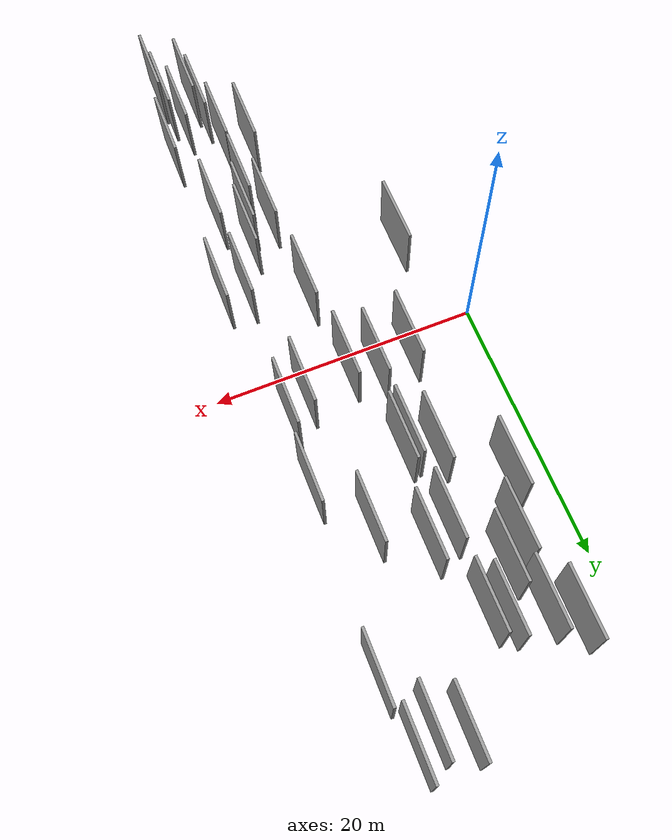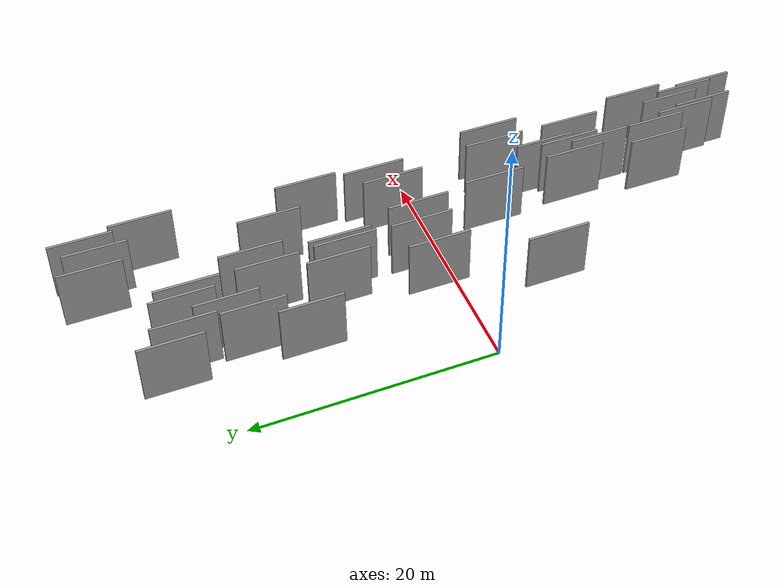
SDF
<sdf version="1.6">
 <world name="default">
  <scene>
   <sky><clouds><speed>12</speed></clouds></sky>
   <ambient>0.4 0.4 0.4 1</ambient>
   <background>0.7 0.7 0.7 1</background>
   <shadows>1</shadows>
  </scene>
  <gravity>0 0 -9.8066</gravity>
  <magnetic_field>6e-06 2.3e-05 -4.2e-05</magnetic_field>
  <physics default="0" name="default_physics" type="ode">
   <ode>
    <solver>
     <type>quick</type>
     <iters>10</iters>
     <sor>1.0</sor>
     <use_dynamic_moi_rescaling>0</use_dynamic_moi_rescaling>
    </solver>
    <constraints>
     <cfm>0</cfm>
     <erp>0.2</erp>
     <contact_max_correcting_vel>100</contact_max_correcting_vel>
     <contact_surface_layer>0.001</contact_surface_layer>
    </constraints>
   </ode>
   <max_step_size>0.004</max_step_size>
   <real_time_factor>1</real_time_factor>
   <real_time_update_rate>250</real_time_update_rate>
  </physics>
  <light name="sun" type="directional">
   <pose>0 0 10 0 0 0</pose>
   <diffuse>0.8 0.8 0.8 1</diffuse>
   <specular>0.2 0.2 0.2 1</specular>
   <attenuation>
    <range>1000</range>
    <constant>0.9</constant>
    <linear>0.01</linear>
    <quadratic>0.001</quadratic>
   </attenuation>
   <direction>-0.5 0.1 -0.9</direction>
  </light>
  <model name="grey_wall_1">
   <static>1</static>
   <pose>12.9203 27.4622 2.5 0.000000 0.000000 1.570796</pose>
   <link name="link">
    <pose>0 0 2.50 0 0 0</pose>
    <collision name="collision"><geometry><box><size>5.00 0.2 5.00</size></box></geometry></collision>
    <visual name="visual">
     <cast_shadows>0</cast_shadows>
     <geometry><box><size>5.00 0.2 5.00</size></box></geometry>
     <material>
      <script>
       <uri>model://grey_wall/materials/scripts</uri>
       <uri>model://grey_wall/materials/textures</uri>
       <name>vrc/grey_wall</name>
      </script>
     </material>
    </visual>
   </link>
  </model>
  <model name="grey_wall_2">
   <static>1</static>
   <pose>11.5461 -11.6714 2.5 0.000000 0.000000 1.570796</pose>
   <link name="link">
    <pose>0 0 2.50 0 0 0</pose>
    <collision name="collision"><geometry><box><size>5.00 0.2 5.00</size></box></geometry></collision>
    <visual name="visual">
     <cast_shadows>0</cast_shadows>
     <geometry><box><size>5.00 0.2 5.00</size></box></geometry>
     <material>
      <script>
       <uri>model://grey_wall/materials/scripts</uri>
       <uri>model://grey_wall/materials/textures</uri>
       <name>vrc/grey_wall</name>
      </script>
     </material>
    </visual>
   </link>
  </model>
  <model name="grey_wall_3">
   <static>1</static>
   <pose>10.7123 2.2798 2.5 0.000000 0.000000 1.570796</pose>
   <link name="link">
    <pose>0 0 2.50 0 0 0</pose>
    <collision name="collision"><geometry><box><size>5.00 0.2 5.00</size></box></geometry></collision>
    <visual name="visual">
     <cast_shadows>0</cast_shadows>
     <geometry><box><size>5.00 0.2 5.00</size></box></geometry>
     <material>
      <script>
       <uri>model://grey_wall/materials/scripts</uri>
       <uri>model://grey_wall/materials/textures</uri>
       <name>vrc/grey_wall</name>
      </script>
     </material>
    </visual>
   </link>
  </model>
  <model name="grey_wall_4">
   <static>1</static>
   <pose>15.6072 -24.0280 2.5 0.000000 0.000000 1.570796</pose>
   <link name="link">
    <pose>0 0 2.50 0 0 0</pose>
    <collision name="collision"><geometry><box><size>5.00 0.2 5.00</size></box></geometry></collision>
    <visual name="visual">
     <cast_shadows>0</cast_shadows>
     <geometry><box><size>5.00 0.2 5.00</size></box></geometry>
     <material>
      <script>
       <uri>model://grey_wall/materials/scripts</uri>
       <uri>model://grey_wall/materials/textures</uri>
       <name>vrc/grey_wall</name>
      </script>
     </material>
    </visual>
   </link>
  </model>
  <model name="grey_wall_5">
   <static>1</static>
   <pose>16.7725 22.7189 2.5 0.000000 0.000000 1.570796</pose>
   <link name="link">
    <pose>0 0 2.50 0 0 0</pose>
    <collision name="collision"><geometry><box><size>5.00 0.2 5.00</size></box></geometry></collision>
    <visual name="visual">
     <cast_shadows>0</cast_shadows>
     <geometry><box><size>5.00 0.2 5.00</size></box></geometry>
     <material>
      <script>
       <uri>model://grey_wall/materials/scripts</uri>
       <uri>model://grey_wall/materials/textures</uri>
       <name>vrc/grey_wall</name>
      </script>
     </material>
    </visual>
   </link>
  </model>
  <model name="grey_wall_6">
   <static>1</static>
   <pose>16.1459 9.6242 2.5 0.000000 0.000000 1.570796</pose>
   <link name="link">
    <pose>0 0 2.50 0 0 0</pose>
    <collision name="collision"><geometry><box><size>5.00 0.2 5.00</size></box></geometry></collision>
    <visual name="visual">
     <cast_shadows>0</cast_shadows>
     <geometry><box><size>5.00 0.2 5.00</size></box></geometry>
     <material>
      <script>
       <uri>model://grey_wall/materials/scripts</uri>
       <uri>model://grey_wall/materials/textures</uri>
       <name>vrc/grey_wall</name>
      </script>
     </material>
    </visual>
   </link>
  </model>
  <model name="grey_wall_7">
   <static>1</static>
   <pose>13.1717 -22.7713 2.5 0.000000 0.000000 1.570796</pose>
   <link name="link">
    <pose>0 0 2.50 0 0 0</pose>
    <collision name="collision"><geometry><box><size>5.00 0.2 5.00</size></box></geometry></collision>
    <visual name="visual">
     <cast_shadows>0</cast_shadows>
     <geometry><box><size>5.00 0.2 5.00</size></box></geometry>
     <material>
      <script>
       <uri>model://grey_wall/materials/scripts</uri>
       <uri>model://grey_wall/materials/textures</uri>
       <name>vrc/grey_wall</name>
      </script>
     </material>
    </visual>
   </link>
  </model>
  <model name="grey_wall_8">
   <static>1</static>
   <pose>4.8966 17.3960 2.5 0.000000 0.000000 1.570796</pose>
   <link name="link">
    <pose>0 0 2.50 0 0 0</pose>
    <collision name="collision"><geometry><box><size>5.00 0.2 5.00</size></box></geometry></collision>
    <visual name="visual">
     <cast_shadows>0</cast_shadows>
     <geometry><box><size>5.00 0.2 5.00</size></box></geometry>
     <material>
      <script>
       <uri>model://grey_wall/materials/scripts</uri>
       <uri>model://grey_wall/materials/textures</uri>
       <name>vrc/grey_wall</name>
      </script>
     </material>
    </visual>
   </link>
  </model>
  <model name="grey_wall_9">
   <static>1</static>
   <pose>14.8341 -22.2336 2.5 0.000000 0.000000 1.570796</pose>
   <link name="link">
    <pose>0 0 2.50 0 0 0</pose>
    <collision name="collision"><geometry><box><size>5.00 0.2 5.00</size></box></geometry></collision>
    <visual name="visual">
     <cast_shadows>0</cast_shadows>
     <geometry><box><size>5.00 0.2 5.00</size></box></geometry>
     <material>
      <script>
       <uri>model://grey_wall/materials/scripts</uri>
       <uri>model://grey_wall/materials/textures</uri>
       <name>vrc/grey_wall</name>
      </script>
     </material>
    </visual>
   </link>
  </model>
  <model name="grey_wall_10">
   <static>1</static>
   <pose>13.5826 -10.0143 2.5 0.000000 0.000000 1.570796</pose>
   <link name="link">
    <pose>0 0 2.50 0 0 0</pose>
    <collision name="collision"><geometry><box><size>5.00 0.2 5.00</size></box></geometry></collision>
    <visual name="visual">
     <cast_shadows>0</cast_shadows>
     <geometry><box><size>5.00 0.2 5.00</size></box></geometry>
     <material>
      <script>
       <uri>model://grey_wall/materials/scripts</uri>
       <uri>model://grey_wall/materials/textures</uri>
       <name>vrc/grey_wall</name>
      </script>
     </material>
    </visual>
   </link>
  </model>
  <model name="grey_wall_11">
   <static>1</static>
   <pose>6.3353 19.0176 2.5 0.000000 0.000000 1.570796</pose>
   <link name="link">
    <pose>0 0 2.50 0 0 0</pose>
    <collision name="collision"><geometry><box><size>5.00 0.2 5.00</size></box></geometry></collision>
    <visual name="visual">
     <cast_shadows>0</cast_shadows>
     <geometry><box><size>5.00 0.2 5.00</size></box></geometry>
     <material>
      <script>
       <uri>model://grey_wall/materials/scripts</uri>
       <uri>model://grey_wall/materials/textures</uri>
       <name>vrc/grey_wall</name>
      </script>
     </material>
    </visual>
   </link>
  </model>
  <model name="grey_wall_12">
   <static>1</static>
   <pose>8.9002 8.9577 2.5 0.000000 0.000000 1.570796</pose>
   <link name="link">
    <pose>0 0 2.50 0 0 0</pose>
    <collision name="collision"><geometry><box><size>5.00 0.2 5.00</size></box></geometry></collision>
    <visual name="visual">
     <cast_shadows>0</cast_shadows>
     <geometry><box><size>5.00 0.2 5.00</size></box></geometry>
     <material>
      <script>
       <uri>model://grey_wall/materials/scripts</uri>
       <uri>model://grey_wall/materials/textures</uri>
       <name>vrc/grey_wall</name>
      </script>
     </material>
    </visual>
   </link>
  </model>
  <model name="grey_wall_13">
   <static>1</static>
   <pose>3.5009 13.4850 2.5 0.000000 0.000000 1.570796</pose>
   <link name="link">
    <pose>0 0 2.50 0 0 0</pose>
    <collision name="collision"><geometry><box><size>5.00 0.2 5.00</size></box></geometry></collision>
    <visual name="visual">
     <cast_shadows>0</cast_shadows>
     <geometry><box><size>5.00 0.2 5.00</size></box></geometry>
     <material>
      <script>
       <uri>model://grey_wall/materials/scripts</uri>
       <uri>model://grey_wall/materials/textures</uri>
       <name>vrc/grey_wall</name>
      </script>
     </material>
    </visual>
   </link>
  </model>
  <model name="grey_wall_14">
   <static>1</static>
   <pose>16.9659 -6.4878 2.5 0.000000 0.000000 1.570796</pose>
   <link name="link">
    <pose>0 0 2.50 0 0 0</pose>
    <collision name="collision"><geometry><box><size>5.00 0.2 5.00</size></box></geometry></collision>
    <visual name="visual">
     <cast_shadows>0</cast_shadows>
     <geometry><box><size>5.00 0.2 5.00</size></box></geometry>
     <material>
      <script>
       <uri>model://grey_wall/materials/scripts</uri>
       <uri>model://grey_wall/materials/textures</uri>
       <name>vrc/grey_wall</name>
      </script>
     </material>
    </visual>
   </link>
  </model>
  <model name="grey_wall_15">
   <static>1</static>
   <pose>10.4096 15.9132 2.5 0.000000 0.000000 1.570796</pose>
   <link name="link">
    <pose>0 0 2.50 0 0 0</pose>
    <collision name="collision"><geometry><box><size>5.00 0.2 5.00</size></box></geometry></collision>
    <visual name="visual">
     <cast_shadows>0</cast_shadows>
     <geometry><box><size>5.00 0.2 5.00</size></box></geometry>
     <material>
      <script>
       <uri>model://grey_wall/materials/scripts</uri>
       <uri>model://grey_wall/materials/textures</uri>
       <name>vrc/grey_wall</name>
      </script>
     </material>
    </visual>
   </link>
  </model>
  <model name="grey_wall_16">
   <static>1</static>
   <pose>5.2708 22.4795 2.5 0.000000 0.000000 1.570796</pose>
   <link name="link">
    <pose>0 0 2.50 0 0 0</pose>
    <collision name="collision"><geometry><box><size>5.00 0.2 5.00</size></box></geometry></collision>
    <visual name="visual">
     <cast_shadows>0</cast_shadows>
     <geometry><box><size>5.00 0.2 5.00</size></box></geometry>
     <material>
      <script>
       <uri>model://grey_wall/materials/scripts</uri>
       <uri>model://grey_wall/materials/textures</uri>
       <name>vrc/grey_wall</name>
      </script>
     </material>
    </visual>
   </link>
  </model>
  <model name="grey_wall_17">
   <static>1</static>
   <pose>7.3440 10.0413 2.5 0.000000 0.000000 1.570796</pose>
   <link name="link">
    <pose>0 0 2.50 0 0 0</pose>
    <collision name="collision"><geometry><box><size>5.00 0.2 5.00</size></box></geometry></collision>
    <visual name="visual">
     <cast_shadows>0</cast_shadows>
     <geometry><box><size>5.00 0.2 5.00</size></box></geometry>
     <material>
      <script>
       <uri>model://grey_wall/materials/scripts</uri>
       <uri>model://grey_wall/materials/textures</uri>
       <name>vrc/grey_wall</name>
      </script>
     </material>
    </visual>
   </link>
  </model>
  <model name="grey_wall_18">
   <static>1</static>
   <pose>9.4286 9.1943 2.5 0.000000 0.000000 1.570796</pose>
   <link name="link">
    <pose>0 0 2.50 0 0 0</pose>
    <collision name="collision"><geometry><box><size>5.00 0.2 5.00</size></box></geometry></collision>
    <visual name="visual">
     <cast_shadows>0</cast_shadows>
     <geometry><box><size>5.00 0.2 5.00</size></box></geometry>
     <material>
      <script>
       <uri>model://grey_wall/materials/scripts</uri>
       <uri>model://grey_wall/materials/textures</uri>
       <name>vrc/grey_wall</name>
      </script>
     </material>
    </visual>
   </link>
  </model>
  <model name="grey_wall_19">
   <static>1</static>
   <pose>12.5606 -14.4296 2.5 0.000000 0.000000 1.570796</pose>
   <link name="link">
    <pose>0 0 2.50 0 0 0</pose>
    <collision name="collision"><geometry><box><size>5.00 0.2 5.00</size></box></geometry></collision>
    <visual name="visual">
     <cast_shadows>0</cast_shadows>
     <geometry><box><size>5.00 0.2 5.00</size></box></geometry>
     <material>
      <script>
       <uri>model://grey_wall/materials/scripts</uri>
       <uri>model://grey_wall/materials/textures</uri>
       <name>vrc/grey_wall</name>
      </script>
     </material>
    </visual>
   </link>
  </model>
  <model name="grey_wall_20">
   <static>1</static>
   <pose>10.6122 -18.8031 2.5 0.000000 0.000000 1.570796</pose>
   <link name="link">
    <pose>0 0 2.50 0 0 0</pose>
    <collision name="collision"><geometry><box><size>5.00 0.2 5.00</size></box></geometry></collision>
    <visual name="visual">
     <cast_shadows>0</cast_shadows>
     <geometry><box><size>5.00 0.2 5.00</size></box></geometry>
     <material>
      <script>
       <uri>model://grey_wall/materials/scripts</uri>
       <uri>model://grey_wall/materials/textures</uri>
       <name>vrc/grey_wall</name>
      </script>
     </material>
    </visual>
   </link>
  </model>
  <model name="grey_wall_21">
   <static>1</static>
   <pose>15.6922 4.0724 2.5 0.000000 0.000000 1.570796</pose>
   <link name="link">
    <pose>0 0 2.50 0 0 0</pose>
    <collision name="collision"><geometry><box><size>5.00 0.2 5.00</size></box></geometry></collision>
    <visual name="visual">
     <cast_shadows>0</cast_shadows>
     <geometry><box><size>5.00 0.2 5.00</size></box></geometry>
     <material>
      <script>
       <uri>model://grey_wall/materials/scripts</uri>
       <uri>model://grey_wall/materials/textures</uri>
       <name>vrc/grey_wall</name>
      </script>
     </material>
    </visual>
   </link>
  </model>
  <model name="grey_wall_22">
   <static>1</static>
   <pose>14.8339 26.6393 2.5 0.000000 0.000000 1.570796</pose>
   <link name="link">
    <pose>0 0 2.50 0 0 0</pose>
    <collision name="collision"><geometry><box><size>5.00 0.2 5.00</size></box></geometry></collision>
    <visual name="visual">
     <cast_shadows>0</cast_shadows>
     <geometry><box><size>5.00 0.2 5.00</size></box></geometry>
     <material>
      <script>
       <uri>model://grey_wall/materials/scripts</uri>
       <uri>model://grey_wall/materials/textures</uri>
       <name>vrc/grey_wall</name>
      </script>
     </material>
    </visual>
   </link>
  </model>
  <model name="grey_wall_23">
   <static>1</static>
   <pose>14.1491 3.0309 2.5 0.000000 0.000000 1.570796</pose>
   <link name="link">
    <pose>0 0 2.50 0 0 0</pose>
    <collision name="collision"><geometry><box><size>5.00 0.2 5.00</size></box></geometry></collision>
    <visual name="visual">
     <cast_shadows>0</cast_shadows>
     <geometry><box><size>5.00 0.2 5.00</size></box></geometry>
     <material>
      <script>
       <uri>model://grey_wall/materials/scripts</uri>
       <uri>model://grey_wall/materials/textures</uri>
       <name>vrc/grey_wall</name>
      </script>
     </material>
    </visual>
   </link>
  </model>
  <model name="grey_wall_24">
   <static>1</static>
   <pose>15.2235 -13.0170 2.5 0.000000 0.000000 1.570796</pose>
   <link name="link">
    <pose>0 0 2.50 0 0 0</pose>
    <collision name="collision"><geometry><box><size>5.00 0.2 5.00</size></box></geometry></collision>
    <visual name="visual">
     <cast_shadows>0</cast_shadows>
     <geometry><box><size>5.00 0.2 5.00</size></box></geometry>
     <material>
      <script>
       <uri>model://grey_wall/materials/scripts</uri>
       <uri>model://grey_wall/materials/textures</uri>
       <name>vrc/grey_wall</name>
      </script>
     </material>
    </visual>
   </link>
  </model>
  <model name="grey_wall_25">
   <static>1</static>
   <pose>16.1749 27.4548 2.5 0.000000 0.000000 1.570796</pose>
   <link name="link">
    <pose>0 0 2.50 0 0 0</pose>
    <collision name="collision"><geometry><box><size>5.00 0.2 5.00</size></box></geometry></collision>
    <visual name="visual">
     <cast_shadows>0</cast_shadows>
     <geometry><box><size>5.00 0.2 5.00</size></box></geometry>
     <material>
      <script>
       <uri>model://grey_wall/materials/scripts</uri>
       <uri>model://grey_wall/materials/textures</uri>
       <name>vrc/grey_wall</name>
      </script>
     </material>
    </visual>
   </link>
  </model>
  <model name="grey_wall_26">
   <static>1</static>
   <pose>15.8432 -25.9167 2.5 0.000000 0.000000 1.570796</pose>
   <link name="link">
    <pose>0 0 2.50 0 0 0</pose>
    <collision name="collision"><geometry><box><size>5.00 0.2 5.00</size></box></geometry></collision>
    <visual name="visual">
     <cast_shadows>0</cast_shadows>
     <geometry><box><size>5.00 0.2 5.00</size></box></geometry>
     <material>
      <script>
       <uri>model://grey_wall/materials/scripts</uri>
       <uri>model://grey_wall/materials/textures</uri>
       <name>vrc/grey_wall</name>
      </script>
     </material>
    </visual>
   </link>
  </model>
  <model name="grey_wall_27">
   <static>1</static>
   <pose>11.2037 -4.4236 2.5 0.000000 0.000000 1.570796</pose>
   <link name="link">
    <pose>0 0 2.50 0 0 0</pose>
    <collision name="collision"><geometry><box><size>5.00 0.2 5.00</size></box></geometry></collision>
    <visual name="visual">
     <cast_shadows>0</cast_shadows>
     <geometry><box><size>5.00 0.2 5.00</size></box></geometry>
     <material>
      <script>
       <uri>model://grey_wall/materials/scripts</uri>
       <uri>model://grey_wall/materials/textures</uri>
       <name>vrc/grey_wall</name>
      </script>
     </material>
    </visual>
   </link>
  </model>
  <model name="grey_wall_28">
   <static>1</static>
   <pose>3.6374 23.8120 2.5 0.000000 0.000000 1.570796</pose>
   <link name="link">
    <pose>0 0 2.50 0 0 0</pose>
    <collision name="collision"><geometry><box><size>5.00 0.2 5.00</size></box></geometry></collision>
    <visual name="visual">
     <cast_shadows>0</cast_shadows>
     <geometry><box><size>5.00 0.2 5.00</size></box></geometry>
     <material>
      <script>
       <uri>model://grey_wall/materials/scripts</uri>
       <uri>model://grey_wall/materials/textures</uri>
       <name>vrc/grey_wall</name>
      </script>
     </material>
    </visual>
   </link>
  </model>
  <model name="grey_wall_29">
   <static>1</static>
   <pose>13.5188 -24.6177 2.5 0.000000 0.000000 1.570796</pose>
   <link name="link">
    <pose>0 0 2.50 0 0 0</pose>
    <collision name="collision"><geometry><box><size>5.00 0.2 5.00</size></box></geometry></collision>
    <visual name="visual">
     <cast_shadows>0</cast_shadows>
     <geometry><box><size>5.00 0.2 5.00</size></box></geometry>
     <material>
      <script>
       <uri>model://grey_wall/materials/scripts</uri>
       <uri>model://grey_wall/materials/textures</uri>
       <name>vrc/grey_wall</name>
      </script>
     </material>
    </visual>
   </link>
  </model>
  <model name="grey_wall_30">
   <static>1</static>
   <pose>13.1099 -11.9654 2.5 0.000000 0.000000 1.570796</pose>
   <link name="link">
    <pose>0 0 2.50 0 0 0</pose>
    <collision name="collision"><geometry><box><size>5.00 0.2 5.00</size></box></geometry></collision>
    <visual name="visual">
     <cast_shadows>0</cast_shadows>
     <geometry><box><size>5.00 0.2 5.00</size></box></geometry>
     <material>
      <script>
       <uri>model://grey_wall/materials/scripts</uri>
       <uri>model://grey_wall/materials/textures</uri>
       <name>vrc/grey_wall</name>
      </script>
     </material>
    </visual>
   </link>
  </model>
  <model name="grey_wall_31">
   <static>1</static>
   <pose>16.5026 -19.6375 2.5 0.000000 0.000000 1.570796</pose>
   <link name="link">
    <pose>0 0 2.50 0 0 0</pose>
    <collision name="collision"><geometry><box><size>5.00 0.2 5.00</size></box></geometry></collision>
    <visual name="visual">
     <cast_shadows>0</cast_shadows>
     <geometry><box><size>5.00 0.2 5.00</size></box></geometry>
     <material>
      <script>
       <uri>model://grey_wall/materials/scripts</uri>
       <uri>model://grey_wall/materials/textures</uri>
       <name>vrc/grey_wall</name>
      </script>
     </material>
    </visual>
   </link>
  </model>
  <model name="grey_wall_32">
   <static>1</static>
   <pose>8.7587 21.3074 2.5 0.000000 0.000000 1.570796</pose>
   <link name="link">
    <pose>0 0 2.50 0 0 0</pose>
    <collision name="collision"><geometry><box><size>5.00 0.2 5.00</size></box></geometry></collision>
    <visual name="visual">
     <cast_shadows>0</cast_shadows>
     <geometry><box><size>5.00 0.2 5.00</size></box></geometry>
     <material>
      <script>
       <uri>model://grey_wall/materials/scripts</uri>
       <uri>model://grey_wall/materials/textures</uri>
       <name>vrc/grey_wall</name>
      </script>
     </material>
    </visual>
   </link>
  </model>
  <model name="grey_wall_33">
   <static>1</static>
   <pose>6.1484 2.4059 2.5 0.000000 0.000000 1.570796</pose>
   <link name="link">
    <pose>0 0 2.50 0 0 0</pose>
    <collision name="collision"><geometry><box><size>5.00 0.2 5.00</size></box></geometry></collision>
    <visual name="visual">
     <cast_shadows>0</cast_shadows>
     <geometry><box><size>5.00 0.2 5.00</size></box></geometry>
     <material>
      <script>
       <uri>model://grey_wall/materials/scripts</uri>
       <uri>model://grey_wall/materials/textures</uri>
       <name>vrc/grey_wall</name>
      </script>
     </material>
    </visual>
   </link>
  </model>
  <model name="grey_wall_34">
   <static>1</static>
   <pose>3.4774 -6.2241 2.5 0.000000 0.000000 1.570796</pose>
   <link name="link">
    <pose>0 0 2.50 0 0 0</pose>
    <collision name="collision"><geometry><box><size>5.00 0.2 5.00</size></box></geometry></collision>
    <visual name="visual">
     <cast_shadows>0</cast_shadows>
     <geometry><box><size>5.00 0.2 5.00</size></box></geometry>
     <material>
      <script>
       <uri>model://grey_wall/materials/scripts</uri>
       <uri>model://grey_wall/materials/textures</uri>
       <name>vrc/grey_wall</name>
      </script>
     </material>
    </visual>
   </link>
  </model>
  <model name="grey_wall_35">
   <static>1</static>
   <pose>15.2349 -6.2545 2.5 0.000000 0.000000 1.570796</pose>
   <link name="link">
    <pose>0 0 2.50 0 0 0</pose>
    <collision name="collision"><geometry><box><size>5.00 0.2 5.00</size></box></geometry></collision>
    <visual name="visual">
     <cast_shadows>0</cast_shadows>
     <geometry><box><size>5.00 0.2 5.00</size></box></geometry>
     <material>
      <script>
       <uri>model://grey_wall/materials/scripts</uri>
       <uri>model://grey_wall/materials/textures</uri>
       <name>vrc/grey_wall</name>
      </script>
     </material>
    </visual>
   </link>
  </model>
  <model name="grey_wall_36">
   <static>1</static>
   <pose>13.4567 13.5019 2.5 0.000000 0.000000 1.570796</pose>
   <link name="link">
    <pose>0 0 2.50 0 0 0</pose>
    <collision name="collision"><geometry><box><size>5.00 0.2 5.00</size></box></geometry></collision>
    <visual name="visual">
     <cast_shadows>0</cast_shadows>
     <geometry><box><size>5.00 0.2 5.00</size></box></geometry>
     <material>
      <script>
       <uri>model://grey_wall/materials/scripts</uri>
       <uri>model://grey_wall/materials/textures</uri>
       <name>vrc/grey_wall</name>
      </script>
     </material>
    </visual>
   </link>
  </model>
  <model name="grey_wall_37">
   <static>1</static>
   <pose>8.7518 15.1389 2.5 0.000000 0.000000 1.570796</pose>
   <link name="link">
    <pose>0 0 2.50 0 0 0</pose>
    <collision name="collision"><geometry><box><size>5.00 0.2 5.00</size></box></geometry></collision>
    <visual name="visual">
     <cast_shadows>0</cast_shadows>
     <geometry><box><size>5.00 0.2 5.00</size></box></geometry>
     <material>
      <script>
       <uri>model://grey_wall/materials/scripts</uri>
       <uri>model://grey_wall/materials/textures</uri>
       <name>vrc/grey_wall</name>
      </script>
     </material>
    </visual>
   </link>
  </model>
  <model name="grey_wall_38">
   <static>1</static>
   <pose>7.7603 21.9148 2.5 0.000000 0.000000 1.570796</pose>
   <link name="link">
    <pose>0 0 2.50 0 0 0</pose>
    <collision name="collision"><geometry><box><size>5.00 0.2 5.00</size></box></geometry></collision>
    <visual name="visual">
     <cast_shadows>0</cast_shadows>
     <geometry><box><size>5.00 0.2 5.00</size></box></geometry>
     <material>
      <script>
       <uri>model://grey_wall/materials/scripts</uri>
       <uri>model://grey_wall/materials/textures</uri>
       <name>vrc/grey_wall</name>
      </script>
     </material>
    </visual>
   </link>
  </model>
  <model name="grey_wall_39">
   <static>1</static>
   <pose>12.5531 -19.6235 2.5 0.000000 0.000000 1.570796</pose>
   <link name="link">
    <pose>0 0 2.50 0 0 0</pose>
    <collision name="collision"><geometry><box><size>5.00 0.2 5.00</size></box></geometry></collision>
    <visual name="visual">
     <cast_shadows>0</cast_shadows>
     <geometry><box><size>5.00 0.2 5.00</size></box></geometry>
     <material>
      <script>
       <uri>model://grey_wall/materials/scripts</uri>
       <uri>model://grey_wall/materials/textures</uri>
       <name>vrc/grey_wall</name>
      </script>
     </material>
    </visual>
   </link>
  </model>
  <model name="grey_wall_40">
   <static>1</static>
   <pose>8.7452 2.7971 2.5 0.000000 0.000000 1.570796</pose>
   <link name="link">
    <pose>0 0 2.50 0 0 0</pose>
    <collision name="collision"><geometry><box><size>5.00 0.2 5.00</size></box></geometry></collision>
    <visual name="visual">
     <cast_shadows>0</cast_shadows>
     <geometry><box><size>5.00 0.2 5.00</size></box></geometry>
     <material>
      <script>
       <uri>model://grey_wall/materials/scripts</uri>
       <uri>model://grey_wall/materials/textures</uri>
       <name>vrc/grey_wall</name>
      </script>
     </material>
    </visual>
   </link>
  </model>
 </world>
</sdf>
